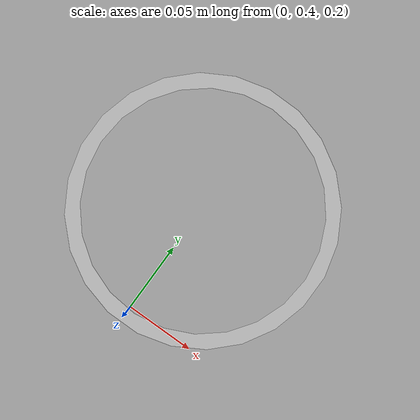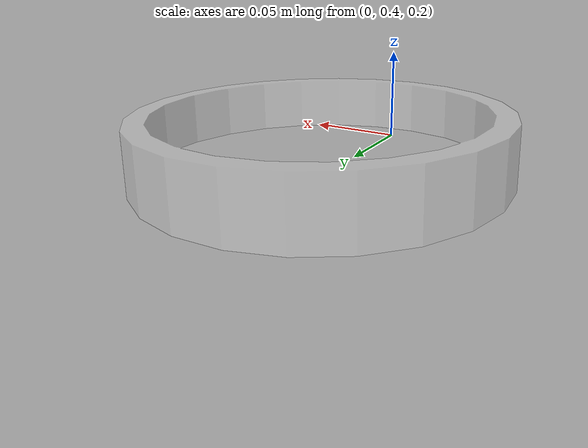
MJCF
<mujoco model="original-1">
  <default>
    <default class="visual">
      <geom group="2" type="mesh" contype="0" conaffinity="0"/>
    </default>
    <default class="collision">
      <geom group="3" type="mesh"/>
    </default>
  </default>
  <asset>
    <material name="material_0_0" specular="0.06666666666666667" shininess="0.03" rgba="0.8627450980392157 0.8627450980392157 0.8627450980392157 0.5019608"/>
    <mesh file="original-1.obj"/>
  </asset>
  <worldbody>
    <body name="original-1">
      <geom material="material_0_0" mesh="original-1" class="visual"/>
      <geom mesh="original-1" class="collision"/>
    </body>
  </worldbody>
</mujoco>
